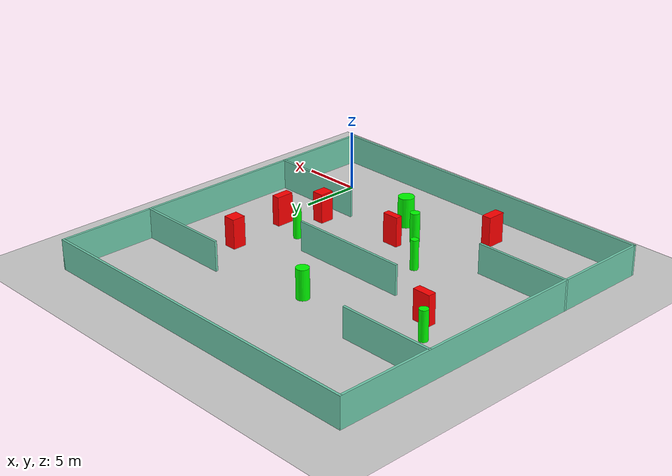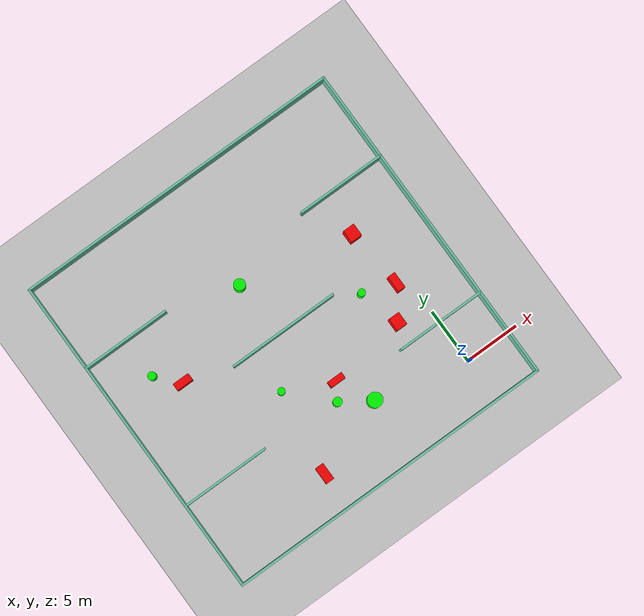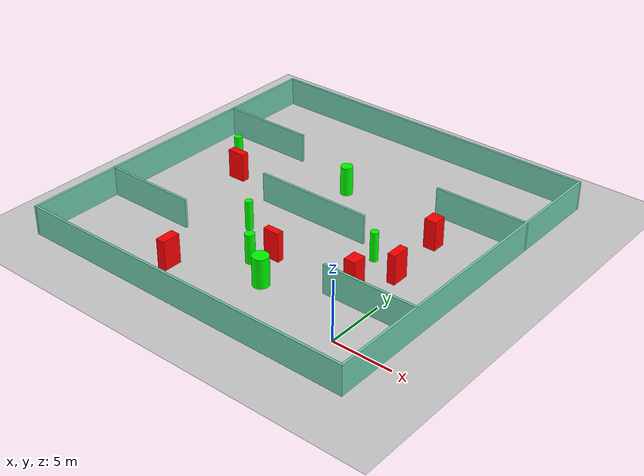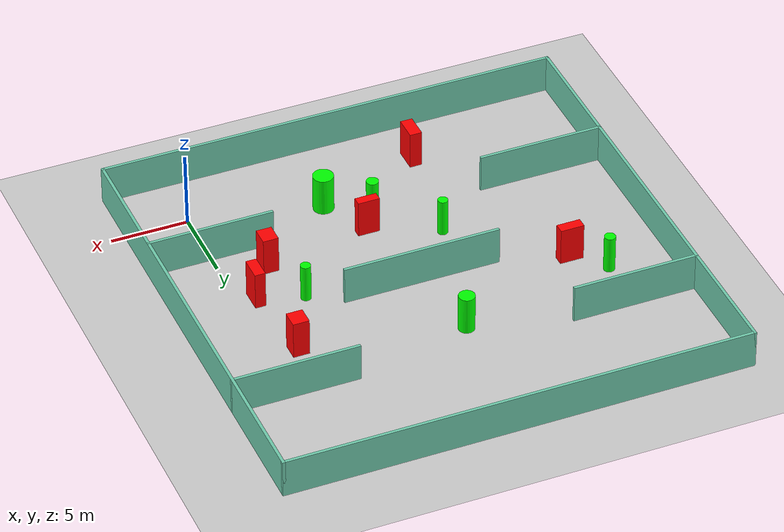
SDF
<sdf version="1.7">
 <world name="default">
  <light name="sun" type="directional">
   <pose>0 0 10 0 -0 0</pose>
   <diffuse>0.8 0.8 0.8 1</diffuse>
   <specular>0.2 0.2 0.2 1</specular>
   <attenuation>
    <range>1000</range>
    <constant>0.9</constant>
    <linear>0.01</linear>
    <quadratic>0.001</quadratic>
   </attenuation>
   <direction>-0.5 0.1 -0.9</direction>
   <spot><inner_angle>0</inner_angle><outer_angle>0</outer_angle><falloff>0</falloff></spot>
  </light>
  <model name="ground_plane">
   <static>1</static>
   <link name="link">
    <collision name="collision">
     <geometry><plane><normal>0 0 1</normal><size>100 100</size></plane></geometry>
     <surface>
      <contact><collide_bitmask>65535</collide_bitmask></contact>
      <friction><ode><mu>100</mu><mu2>50</mu2></ode></friction>
     </surface>
    </collision>
    <visual name="visual">
     <cast_shadows>0</cast_shadows>
     <geometry><plane><normal>0 0 1</normal><size>100 100</size></plane></geometry>
     <material>
      <script><uri>file://media/materials/scripts/gazebo.material</uri><name>Gazebo/Grey</name></script>
     </material>
    </visual>
   </link>
  </model>
  <gravity>0 0 -9.8</gravity>
  <magnetic_field>6e-06 2.3e-05 -4.2e-05</magnetic_field>
  <atmosphere type="adiabatic"/>
  <physics type="ode">
   <max_step_size>0.001</max_step_size>
   <real_time_factor>1</real_time_factor>
   <real_time_update_rate>1000</real_time_update_rate>
  </physics>
  <scene><ambient>0.4 0.4 0.4 1</ambient><background>0.7 0.7 0.7 1</background><shadows>1</shadows></scene>
  <spherical_coordinates>
   <surface_model>EARTH_WGS84</surface_model>
   <latitude_deg>0</latitude_deg>
   <longitude_deg>0</longitude_deg>
   <elevation>0</elevation>
   <heading_deg>0</heading_deg>
  </spherical_coordinates>
  <model name="my_base_walls">
   <link name="Wall_10">
    <collision name="Wall_10_Collision">
     <geometry><box><size>8.2 0.2 2.5</size></box></geometry>
     <pose>0 0 1.25 0 -0 0</pose>
    </collision>
    <visual name="Wall_10_Visual">
     <pose>0 0 1.25 0 -0 0</pose>
     <geometry><box><size>8.2 0.2 2.5</size></box></geometry>
     <material>
      <script><uri>file://media/materials/scripts/gazebo.material</uri><name>Gazebo/Grey</name></script>
      <ambient>0.435294 0.796078 0.67451 1</ambient>
     </material>
     <meta><layer>0</layer></meta>
    </visual>
    <pose>-11 -7 0 0 -0 0</pose>
   </link>
   <link name="Wall_12">
    <collision name="Wall_12_Collision">
     <geometry><box><size>8.2 0.2 2.5</size></box></geometry>
     <pose>0 0 1.25 0 -0 0</pose>
    </collision>
    <visual name="Wall_12_Visual">
     <pose>0 0 1.25 0 -0 0</pose>
     <geometry><box><size>8.2 0.2 2.5</size></box></geometry>
     <material>
      <script><uri>file://media/materials/scripts/gazebo.material</uri><name>Gazebo/Grey</name></script>
      <ambient>0.435294 0.796078 0.67451 1</ambient>
     </material>
     <meta><layer>0</layer></meta>
    </visual>
    <pose>-11 7 0 0 -0 0</pose>
   </link>
   <link name="Wall_14">
    <collision name="Wall_14_Collision">
     <geometry><box><size>8.2 0.2 2.5</size></box></geometry>
     <pose>0 0 1.25 0 -0 0</pose>
    </collision>
    <visual name="Wall_14_Visual">
     <pose>0 0 1.25 0 -0 0</pose>
     <geometry><box><size>8.2 0.2 2.5</size></box></geometry>
     <material>
      <script><uri>file://media/materials/scripts/gazebo.material</uri><name>Gazebo/Grey</name></script>
      <ambient>0.435294 0.796078 0.67451 1</ambient>
     </material>
     <meta><layer>0</layer></meta>
    </visual>
    <pose>11 7 0 0 -0 3.14159</pose>
   </link>
   <link name="Wall_16">
    <collision name="Wall_16_Collision">
     <geometry><box><size>10.2 0.2 2.5</size></box></geometry>
     <pose>0 0 1.25 0 -0 0</pose>
    </collision>
    <visual name="Wall_16_Visual">
     <pose>0 0 1.25 0 -0 0</pose>
     <geometry><box><size>10.2 0.2 2.5</size></box></geometry>
     <material>
      <script><uri>file://media/materials/scripts/gazebo.material</uri><name>Gazebo/Grey</name></script>
      <ambient>0.435294 0.796078 0.67451 1</ambient>
     </material>
     <meta><layer>0</layer></meta>
    </visual>
    <pose>0 0 0 0 -0 3.14159</pose>
   </link>
   <link name="Wall_2">
    <collision name="Wall_2_Collision">
     <geometry><box><size>30.2 0.2 2.5</size></box></geometry>
     <pose>0 0 1.25 0 -0 0</pose>
    </collision>
    <visual name="Wall_2_Visual">
     <pose>0 0 1.25 0 -0 0</pose>
     <geometry><box><size>30.2 0.2 2.5</size></box></geometry>
     <material>
      <script><uri>file://media/materials/scripts/gazebo.material</uri><name>Gazebo/Grey</name></script>
      <ambient>0.435294 0.796078 0.67451 1</ambient>
     </material>
     <meta><layer>0</layer></meta>
    </visual>
    <pose>0 -15 0 0 -0 3.14159</pose>
   </link>
   <link name="Wall_3">
    <collision name="Wall_3_Collision">
     <geometry><box><size>30.2 0.2 2.5</size></box></geometry>
     <pose>0 0 1.25 0 -0 0</pose>
    </collision>
    <visual name="Wall_3_Visual">
     <pose>0 0 1.25 0 -0 0</pose>
     <geometry><box><size>30.2 0.2 2.5</size></box></geometry>
     <material>
      <script><uri>file://media/materials/scripts/gazebo.material</uri><name>Gazebo/Grey</name></script>
      <ambient>0.435294 0.796078 0.67451 1</ambient>
     </material>
     <meta><layer>0</layer></meta>
    </visual>
    <pose>-15 0 0 0 -0 1.5708</pose>
   </link>
   <link name="Wall_4">
    <collision name="Wall_4_Collision">
     <geometry><box><size>30.2 0.2 2.5</size></box></geometry>
     <pose>0 0 1.25 0 -0 0</pose>
    </collision>
    <visual name="Wall_4_Visual">
     <pose>0 0 1.25 0 -0 0</pose>
     <geometry><box><size>30.2 0.2 2.5</size></box></geometry>
     <material>
      <script><uri>file://media/materials/scripts/gazebo.material</uri><name>Gazebo/Grey</name></script>
      <ambient>0.435294 0.796078 0.67451 1</ambient>
     </material>
     <meta><layer>0</layer></meta>
    </visual>
    <pose>0 15 0 0 -0 0</pose>
   </link>
   <link name="Wall_6">
    <collision name="Wall_6_Collision">
     <geometry><box><size>30.2 0.2 2.5</size></box></geometry>
     <pose>0 0 1.25 0 -0 0</pose>
    </collision>
    <visual name="Wall_6_Visual">
     <pose>0 0 1.25 0 -0 0</pose>
     <geometry><box><size>30.2 0.2 2.5</size></box></geometry>
     <material>
      <script><uri>file://media/materials/scripts/gazebo.material</uri><name>Gazebo/Grey</name></script>
      <ambient>0.435294 0.796078 0.67451 1</ambient>
     </material>
     <meta><layer>0</layer></meta>
    </visual>
    <pose>15 0 0 0 -0 1.5708</pose>
   </link>
   <link name="Wall_8">
    <collision name="Wall_8_Collision">
     <geometry><box><size>8.2 0.2 2.5</size></box></geometry>
     <pose>0 0 1.25 0 -0 0</pose>
    </collision>
    <visual name="Wall_8_Visual">
     <pose>0 0 1.25 0 -0 0</pose>
     <geometry><box><size>8.2 0.2 2.5</size></box></geometry>
     <material>
      <script><uri>file://media/materials/scripts/gazebo.material</uri><name>Gazebo/Grey</name></script>
      <ambient>0.435294 0.796078 0.67451 1</ambient>
     </material>
     <meta><layer>0</layer></meta>
    </visual>
    <pose>11 -7 0 0 -0 3.14159</pose>
   </link>
   <static>1</static>
   <pose>-11 11 0 0 -0 0</pose>
  </model>
  <model name="cylinder1">
   <static>1</static>
   <link name="link">
    <inertial>
     <mass>1</mass>
     <inertia><ixx>0.5</ixx><ixy>0</ixy><ixz>0</ixz><iyy>0.5</iyy><iyz>0</iyz><izz>1</izz></inertia>
    </inertial>
    <collision name="collision">
     <geometry><cylinder><radius>0.32673270661774284</radius><length>2.5</length></cylinder></geometry>
    </collision>
    <visual name="visual">
     <geometry><cylinder><radius>0.32673270661774284</radius><length>2.5</length></cylinder></geometry>
     <material>
      <ambient>0 1 0 1</ambient>
      <diffuse>0 1 0 1</diffuse>
      <specular>0.1 0.1 0.1 1</specular>
      <emissive>0 0 0 0</emissive>
     </material>
    </visual>
   </link>
   <pose>-14.078555230715002 7.021670943884828 1.25 0 0 0</pose>
  </model>
  <model name="cylinder2">
   <static>1</static>
   <link name="link">
    <inertial>
     <mass>1</mass>
     <inertia><ixx>0.5</ixx><ixy>0</ixy><ixz>0</ixz><iyy>0.5</iyy><iyz>0</iyz><izz>1</izz></inertia>
    </inertial>
    <collision name="collision">
     <geometry><cylinder><radius>0.3990375666451006</radius><length>2.5</length></cylinder></geometry>
    </collision>
    <visual name="visual">
     <geometry><cylinder><radius>0.3990375666451006</radius><length>2.5</length></cylinder></geometry>
     <material>
      <ambient>0 1 0 1</ambient>
      <diffuse>0 1 0 1</diffuse>
      <specular>0.1 0.1 0.1 1</specular>
      <emissive>0 0 0 0</emissive>
     </material>
    </visual>
   </link>
   <pose>-10.836583518351848 3.603008803236749 1.25 0 0 0</pose>
  </model>
  <model name="cylinder3">
   <static>1</static>
   <link name="link">
    <inertial>
     <mass>1</mass>
     <inertia><ixx>0.5</ixx><ixy>0</ixy><ixz>0</ixz><iyy>0.5</iyy><iyz>0</iyz><izz>1</izz></inertia>
    </inertial>
    <collision name="collision">
     <geometry><cylinder><radius>0.33083184325497844</radius><length>2.5</length></cylinder></geometry>
    </collision>
    <visual name="visual">
     <geometry><cylinder><radius>0.33083184325497844</radius><length>2.5</length></cylinder></geometry>
     <material>
      <ambient>0 1 0 1</ambient>
      <diffuse>0 1 0 1</diffuse>
      <specular>0.1 0.1 0.1 1</specular>
      <emissive>0 0 0 0</emissive>
     </material>
    </visual>
   </link>
   <pose>-3.9411873151925896 9.71773064598003 1.25 0 0 0</pose>
  </model>
  <model name="cylinder4">
   <static>1</static>
   <link name="link">
    <inertial>
     <mass>1</mass>
     <inertia><ixx>0.5</ixx><ixy>0</ixy><ixz>0</ixz><iyy>0.5</iyy><iyz>0</iyz><izz>1</izz></inertia>
    </inertial>
    <collision name="collision">
     <geometry><cylinder><radius>0.3613598582126386</radius><length>2.5</length></cylinder></geometry>
    </collision>
    <visual name="visual">
     <geometry><cylinder><radius>0.3613598582126386</radius><length>2.5</length></cylinder></geometry>
     <material>
      <ambient>0 1 0 1</ambient>
      <diffuse>0 1 0 1</diffuse>
      <specular>0.1 0.1 0.1 1</specular>
      <emissive>0 0 0 0</emissive>
     </material>
    </visual>
   </link>
   <pose>-21.974096590880695 14.311317131074315 1.25 0 0 0</pose>
  </model>
  <model name="cylinder5">
   <static>1</static>
   <link name="link">
    <inertial>
     <mass>1</mass>
     <inertia><ixx>0.5</ixx><ixy>0</ixy><ixz>0</ixz><iyy>0.5</iyy><iyz>0</iyz><izz>1</izz></inertia>
    </inertial>
    <collision name="collision">
     <geometry><cylinder><radius>0.6716453349295453</radius><length>2.5</length></cylinder></geometry>
    </collision>
    <visual name="visual">
     <geometry><cylinder><radius>0.6716453349295453</radius><length>2.5</length></cylinder></geometry>
     <material>
      <ambient>0 1 0 1</ambient>
      <diffuse>0 1 0 1</diffuse>
      <specular>0.1 0.1 0.1 1</specular>
      <emissive>0 0 0 0</emissive>
     </material>
    </visual>
   </link>
   <pose>-8.249784076907067 1.9134805681685325 1.25 0 0 0</pose>
  </model>
  <model name="cylinder6">
   <static>1</static>
   <link name="link">
    <inertial>
     <mass>1</mass>
     <inertia><ixx>0.5</ixx><ixy>0</ixy><ixz>0</ixz><iyy>0.5</iyy><iyz>0</iyz><izz>1</izz></inertia>
    </inertial>
    <collision name="collision">
     <geometry><cylinder><radius>0.5228317160300573</radius><length>2.5</length></cylinder></geometry>
    </collision>
    <visual name="visual">
     <geometry><cylinder><radius>0.5228317160300573</radius><length>2.5</length></cylinder></geometry>
     <material>
      <ambient>0 1 0 1</ambient>
      <diffuse>0 1 0 1</diffuse>
      <specular>0.1 0.1 0.1 1</specular>
      <emissive>0 0 0 0</emissive>
     </material>
    </visual>
   </link>
   <pose>-11.709607928736792 16.175522016392723 1.25 0 0 0</pose>
  </model>
  <model name="box1">
   <static>1</static>
   <link name="link">
    <inertial>
     <mass>1</mass>
     <inertia><ixx>0.083</ixx><ixy>0</ixy><ixz>0</ixz><iyy>0.083</iyy><iyz>0</iyz><izz>0.083</izz></inertia>
    </inertial>
    <collision name="collision">
     <geometry><box><size>1.4149889939254314 0.5794299619563041 2.5</size></box></geometry>
    </collision>
    <visual name="visual">
     <geometry><box><size>1.4149889939254314 0.5794299619563041 2.5</size></box></geometry>
     <material>
      <ambient>1 0 0 1</ambient>
      <diffuse>1 0 0 1</diffuse>
      <specular>0.1 0.1 0.1 1</specular>
      <emissive>0 0 0 0</emissive>
     </material>
    </visual>
    <sensor name="my_contact" type="contact">
     <contact><collision>box_collision</collision><topic>__default_topic__</topic></contact>
    </sensor>
   </link>
   <pose>-9.863165428357345 5.108089581598463 1.25 0 0 0</pose>
  </model>
  <model name="box2">
   <static>1</static>
   <link name="link">
    <inertial>
     <mass>1</mass>
     <inertia><ixx>0.083</ixx><ixy>0</ixy><ixz>0</ixz><iyy>0.083</iyy><iyz>0</iyz><izz>0.083</izz></inertia>
    </inertial>
    <collision name="collision">
     <geometry><box><size>0.6842683788913465 1.5103147609611174 2.5</size></box></geometry>
    </collision>
    <visual name="visual">
     <geometry><box><size>0.6842683788913465 1.5103147609611174 2.5</size></box></geometry>
     <material>
      <ambient>1 0 0 1</ambient>
      <diffuse>1 0 0 1</diffuse>
      <specular>0.1 0.1 0.1 1</specular>
      <emissive>0 0 0 0</emissive>
     </material>
    </visual>
    <sensor name="my_contact" type="contact">
     <contact><collision>box_collision</collision><topic>__default_topic__</topic></contact>
    </sensor>
   </link>
   <pose>-1.0943110667574878 8.734666432154519 1.25 0 0 0</pose>
  </model>
  <model name="box3">
   <static>1</static>
   <link name="link">
    <inertial>
     <mass>1</mass>
     <inertia><ixx>0.083</ixx><ixy>0</ixy><ixz>0</ixz><iyy>0.083</iyy><iyz>0</iyz><izz>0.083</izz></inertia>
    </inertial>
    <collision name="collision">
     <geometry><box><size>1.5378223067183066 0.6631629076743487 2.5</size></box></geometry>
    </collision>
    <visual name="visual">
     <geometry><box><size>1.5378223067183066 0.6631629076743487 2.5</size></box></geometry>
     <material>
      <ambient>1 0 0 1</ambient>
      <diffuse>1 0 0 1</diffuse>
      <specular>0.1 0.1 0.1 1</specular>
      <emissive>0 0 0 0</emissive>
     </material>
    </visual>
    <sensor name="my_contact" type="contact">
     <contact><collision>box_collision</collision><topic>__default_topic__</topic></contact>
    </sensor>
   </link>
   <pose>-20.20602716679438 12.401520678438265 1.25 0 0 0</pose>
  </model>
  <model name="box4">
   <static>1</static>
   <link name="link">
    <inertial>
     <mass>1</mass>
     <inertia><ixx>0.083</ixx><ixy>0</ixy><ixz>0</ixz><iyy>0.083</iyy><iyz>0</iyz><izz>0.083</izz></inertia>
    </inertial>
    <collision name="collision">
     <geometry><box><size>1.000108897714231 1.1851584884650386 2.5</size></box></geometry>
    </collision>
    <visual name="visual">
     <geometry><box><size>1.000108897714231 1.1851584884650386 2.5</size></box></geometry>
     <material>
      <ambient>1 0 0 1</ambient>
      <diffuse>1 0 0 1</diffuse>
      <specular>0.1 0.1 0.1 1</specular>
      <emissive>0 0 0 0</emissive>
     </material>
    </visual>
    <sensor name="my_contact" type="contact">
     <contact><collision>box_collision</collision><topic>__default_topic__</topic></contact>
    </sensor>
   </link>
   <pose>-2.9237626776504193 6.034212144052725 1.25 0 0 0</pose>
  </model>
  <model name="box5">
   <static>1</static>
   <link name="link">
    <inertial>
     <mass>1</mass>
     <inertia><ixx>0.083</ixx><ixy>0</ixy><ixz>0</ixz><iyy>0.083</iyy><iyz>0</iyz><izz>0.083</izz></inertia>
    </inertial>
    <collision name="collision">
     <geometry><box><size>0.7896033903041634 1.5635268394060002 2.5</size></box></geometry>
    </collision>
    <visual name="visual">
     <geometry><box><size>0.7896033903041634 1.5635268394060002 2.5</size></box></geometry>
     <material>
      <ambient>1 0 0 1</ambient>
      <diffuse>1 0 0 1</diffuse>
      <specular>0.1 0.1 0.1 1</specular>
      <emissive>0 0 0 0</emissive>
     </material>
    </visual>
    <sensor name="my_contact" type="contact">
     <contact><collision>box_collision</collision><topic>__default_topic__</topic></contact>
    </sensor>
   </link>
   <pose>-15.178506944122315 -0.5642922588857231 1.25 0 0 0</pose>
  </model>
  <model name="box6">
   <static>1</static>
   <link name="link">
    <inertial>
     <mass>1</mass>
     <inertia><ixx>0.083</ixx><ixy>0</ixy><ixz>0</ixz><iyy>0.083</iyy><iyz>0</iyz><izz>0.083</izz></inertia>
    </inertial>
    <collision name="collision">
     <geometry><box><size>1.0522703336305588 1.1416667436680856 2.5</size></box></geometry>
    </collision>
    <visual name="visual">
     <geometry><box><size>1.0522703336305588 1.1416667436680856 2.5</size></box></geometry>
     <material>
      <ambient>1 0 0 1</ambient>
      <diffuse>1 0 0 1</diffuse>
      <specular>0.1 0.1 0.1 1</specular>
      <emissive>0 0 0 0</emissive>
     </material>
    </visual>
    <sensor name="my_contact" type="contact">
     <contact><collision>box_collision</collision><topic>__default_topic__</topic></contact>
    </sensor>
   </link>
   <pose>-1.6520942720026675 14.145987089844908 1.25 0 0 0</pose>
  </model>
 </world>
</sdf>
